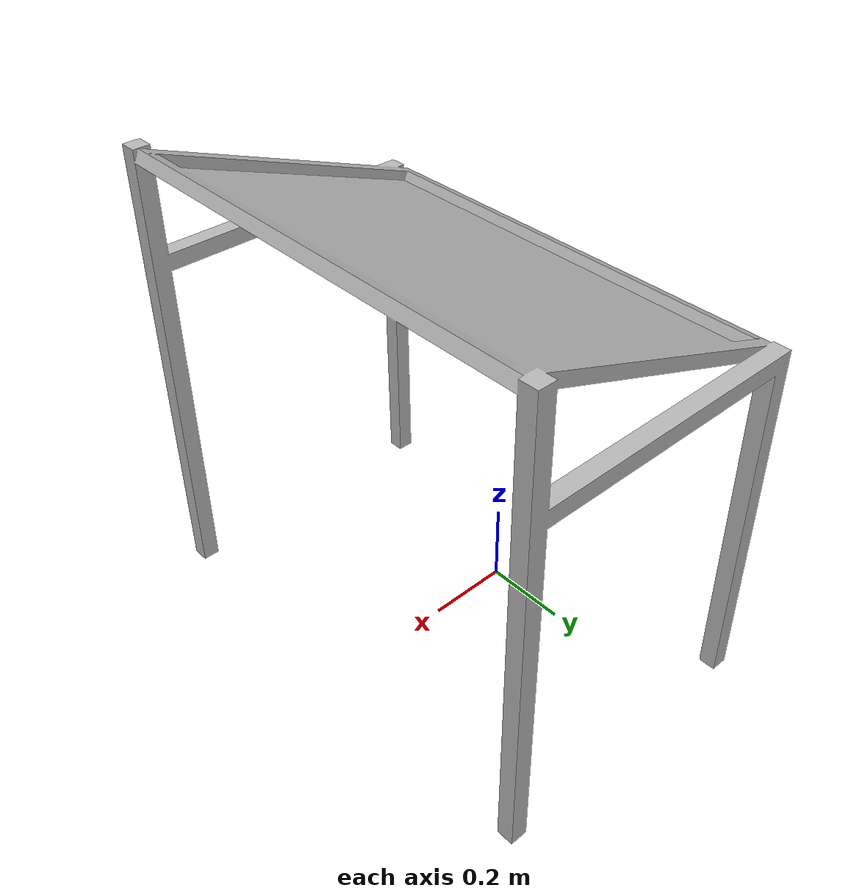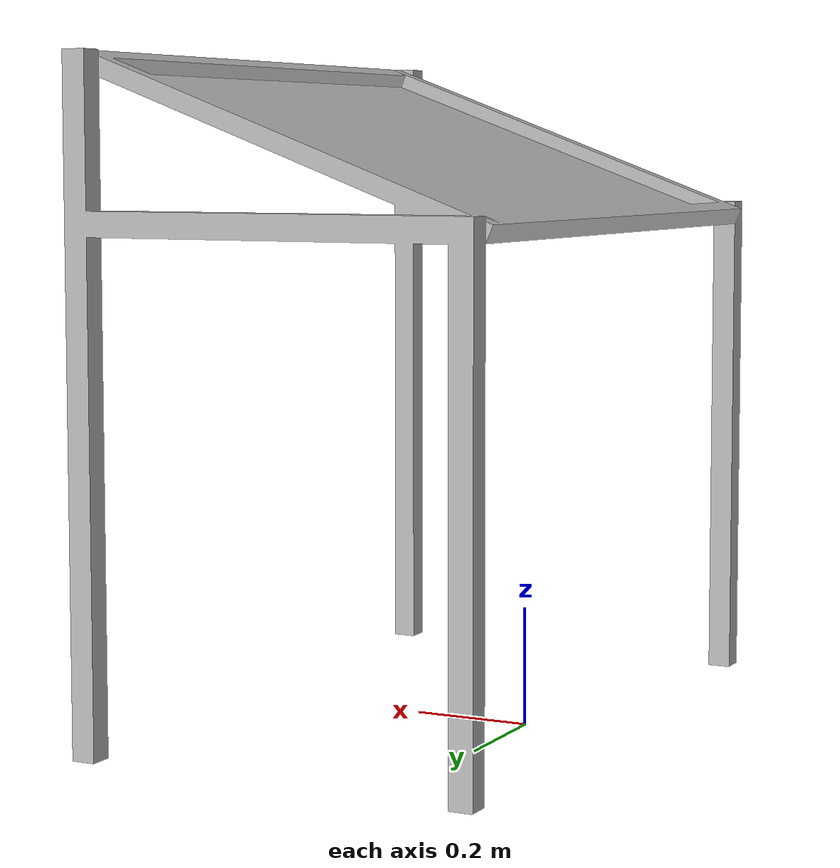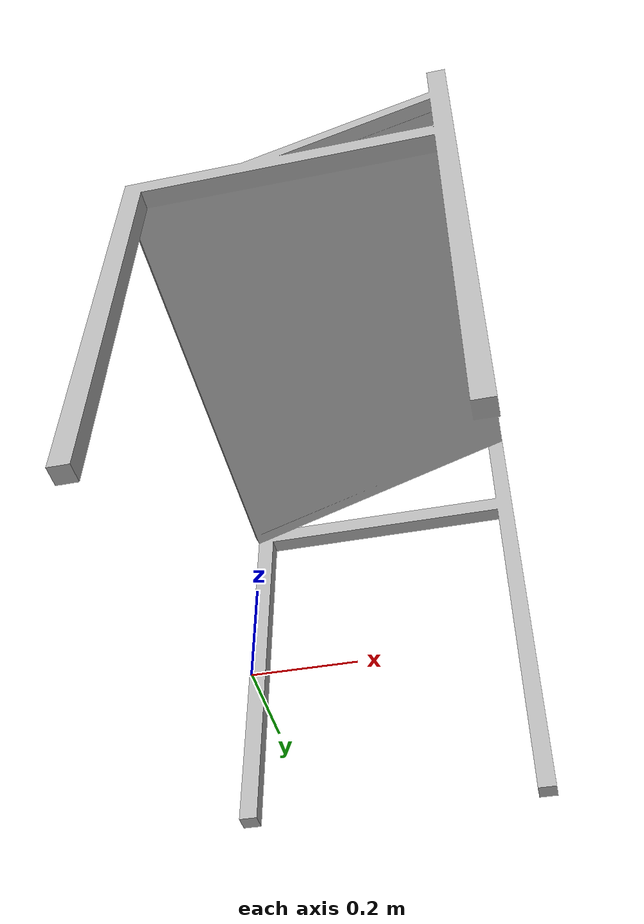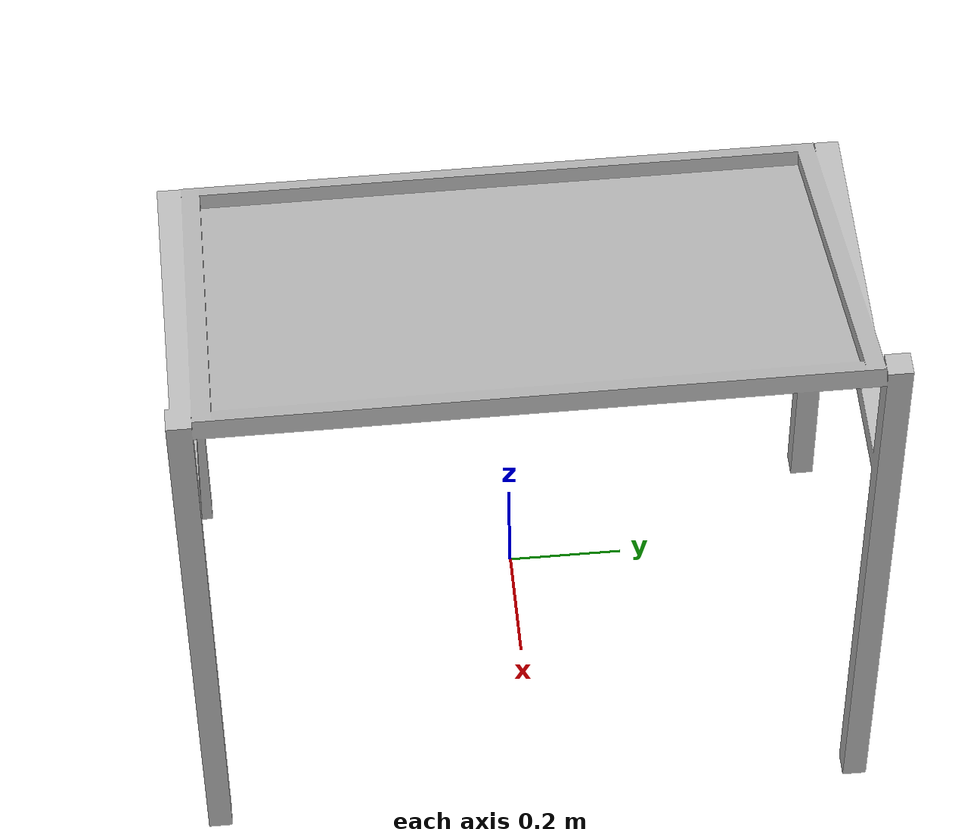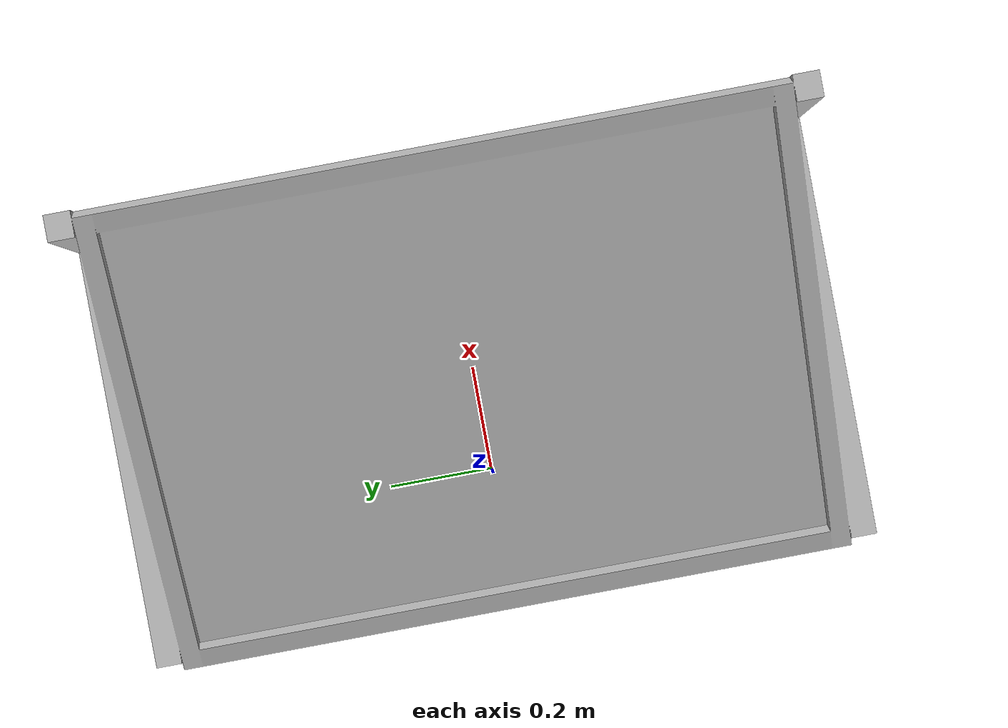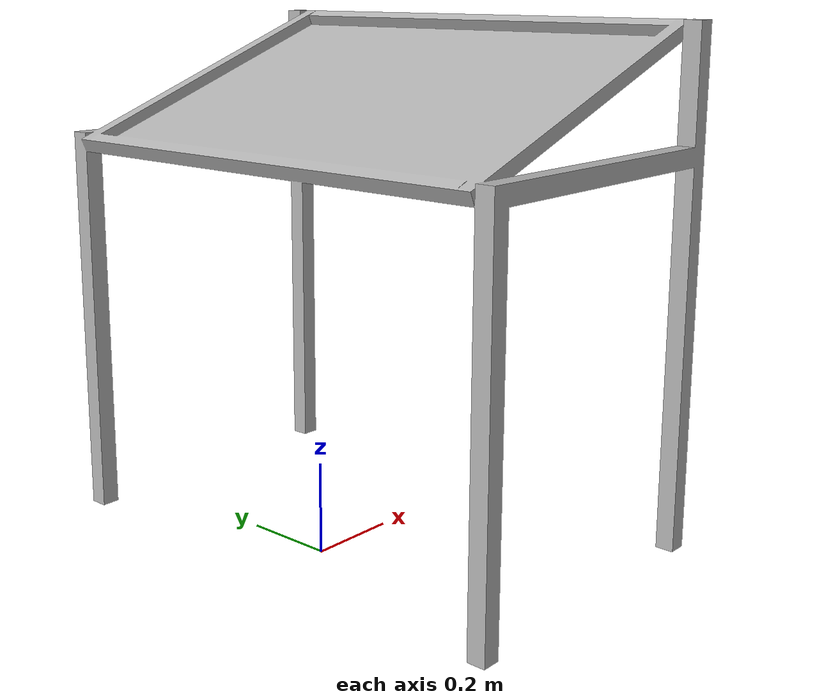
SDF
<?xml version="1.0"?>
<sdf version="1.4">

  <model name="RWAL_op20">

    <static>true</static>

    <link name="link">

      <pose>0 0 0 0 0 0</pose>

      <collision name="station_collision">
        <geometry>
          <mesh>
            <uri>model://RWAL_op20/meshes/RWAL_op20.dae</uri>
          </mesh>
        </geometry>
      </collision>

      <visual name="station_visual">
        <geometry>
          <mesh>
            <uri>model://RWAL_op20/meshes/RWAL_op20.dae</uri>
          </mesh>
        </geometry>

        <material>
          <script>
            <uri>model://RWAL_op20/materials/scripts</uri>
            <uri>model://RWAL_op20/materials/textures</uri>
          </script>
        </material>
      </visual>

    </link>

  </model>
</sdf>
